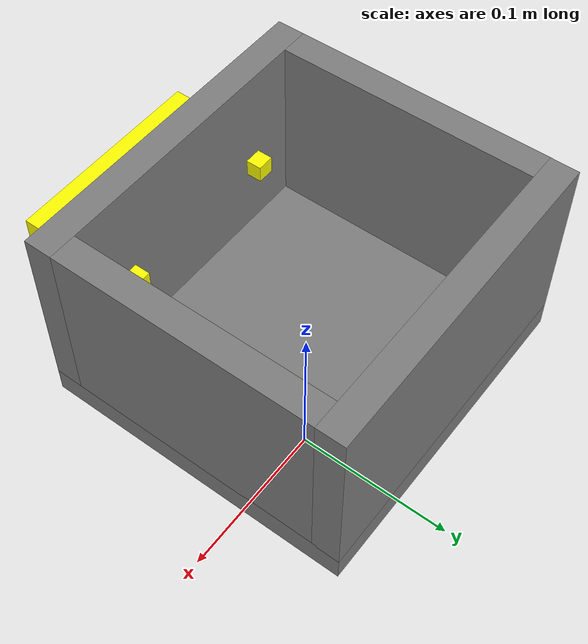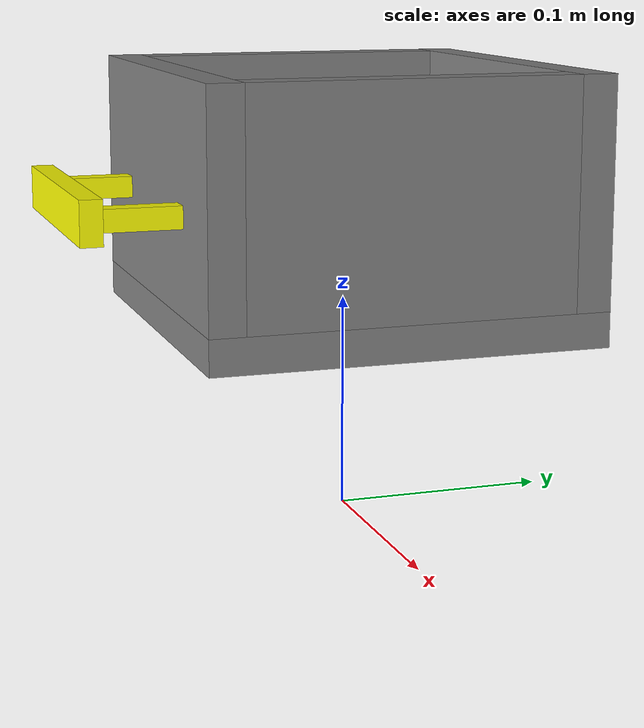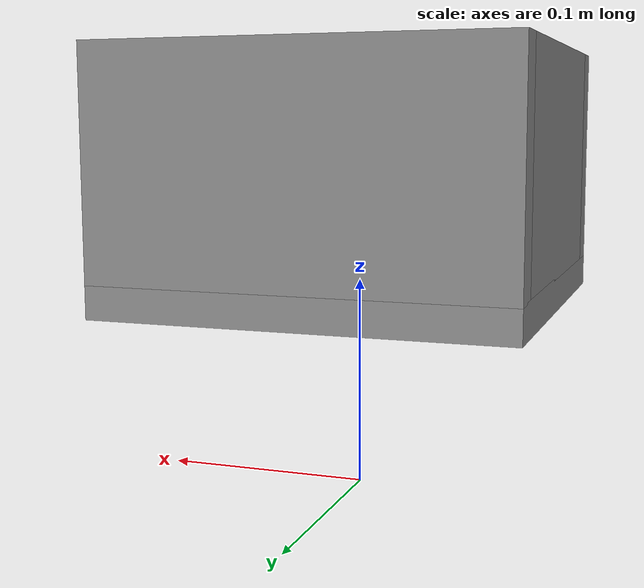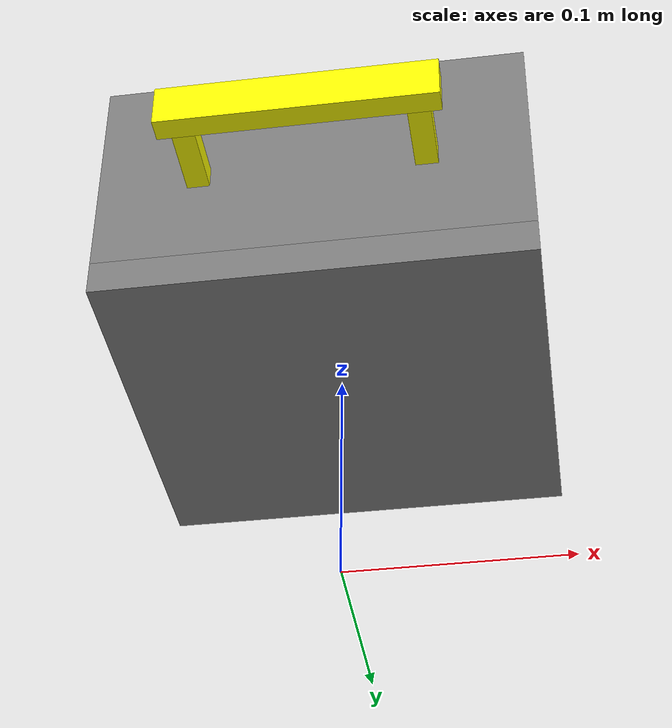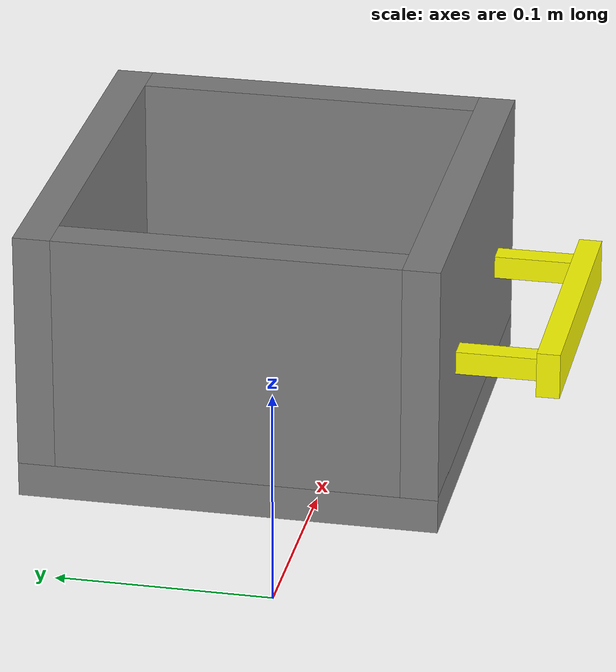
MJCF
<mujoco model="picked_box">
    <worldbody>
        <body name="picked_box" pos="0.0 0.0 0.0" quat="1 0 0 0">
            <geom name="picked_handle" pos="0 -0.13 0.15" quat="1 0 0 0" rgba="1 1 0 1.0" size="0.06 0.005 0.01" friction="0.5 0.5 0.5" type="box" mass="0.001" priority="1"/>
            <geom name="picked_handle1" pos="0.05 -0.095 0.15" quat="1 1 0 0" rgba="1 1 0 1.0" size="0.005 0.005 0.03" friction="0.5 0.5 0.5" type="box" mass="0.005" priority="1"/>
            <geom name="picked_handle2" pos="-0.05 -0.095 0.15" quat="1 1 0 0" rgba="1 1 0 1.0" size="0.005 0.005 0.03" friction="0.5 0.5 0.5" type="box" mass="0.005" priority="1"/>
            <geom name="picked_box1" pos="0 -0.082 0.157" size="0.095 0.008 0.052" type="box" mass="0.02" />
            <geom name="picked_box2" pos="0 0.082 0.157" size="0.095 0.008 0.052" type="box" mass="0.02" />
            <geom name="picked_box3" pos="-0.087 0 0.157" size="0.008 0.074 0.052" type="box" mass="0.01" />
            <geom name="picked_box4" pos="0.087 0 0.157" size="0.008 0.074 0.052" type="box" mass="0.01" />
            <geom name="picked_box5" pos="0 0 0.098" size="0.095 0.09 0.008" type="box" mass="0.04" />

            <joint name="picked_box_joint" type="free"/>

        </body>

    </worldbody>
</mujoco>
